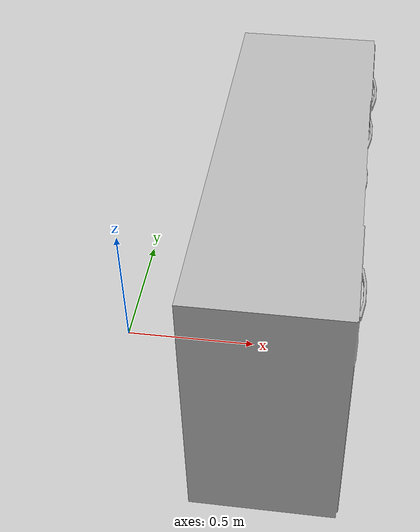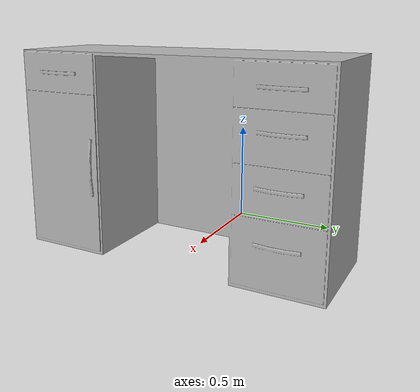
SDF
<?xml version="1.0" ?>
<sdf version="1.7">
  <model name="table">
    <static>true</static>

    <link name="link">
      <visual name="visual">
        <geometry>
          <mesh>
            <uri>model://table/table.dae</uri>
            <scale>0.75 0.75 1</scale>
          </mesh>
        </geometry>
      </visual>

      <collision name="collision">
        <geometry>
          <mesh>
            <uri>model://table/table.dae</uri>
          </mesh>
        </geometry>
      </collision>
    </link>
  </model>
</sdf>
